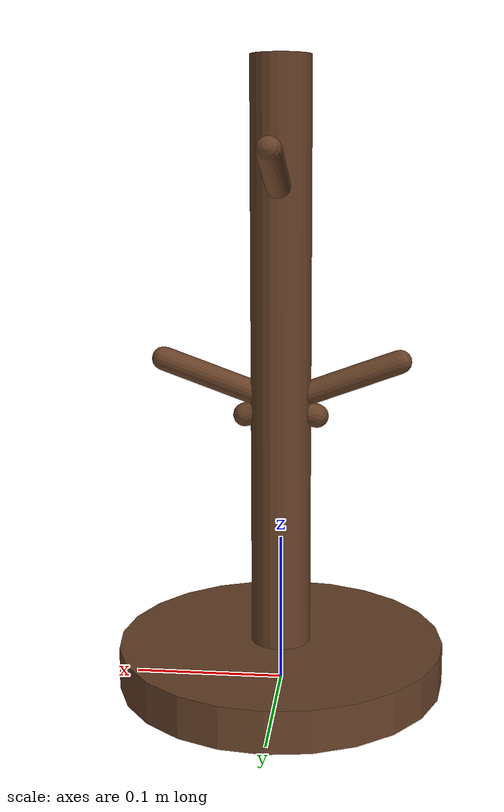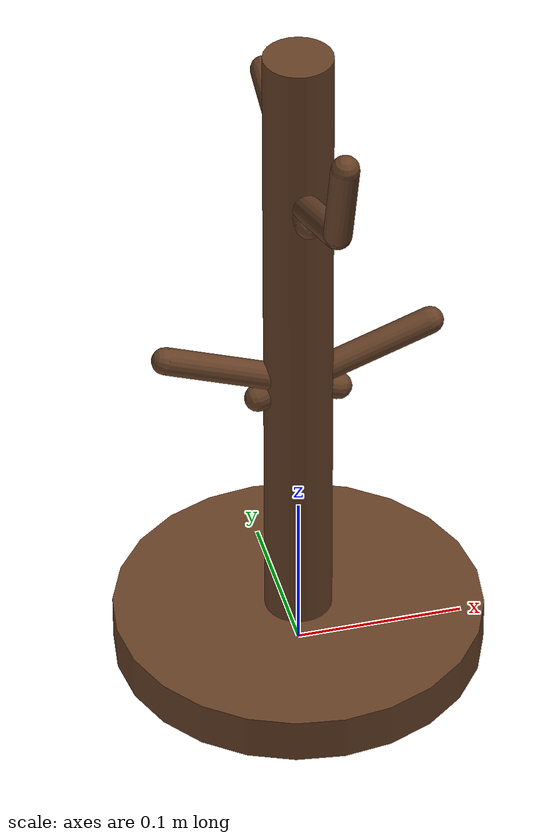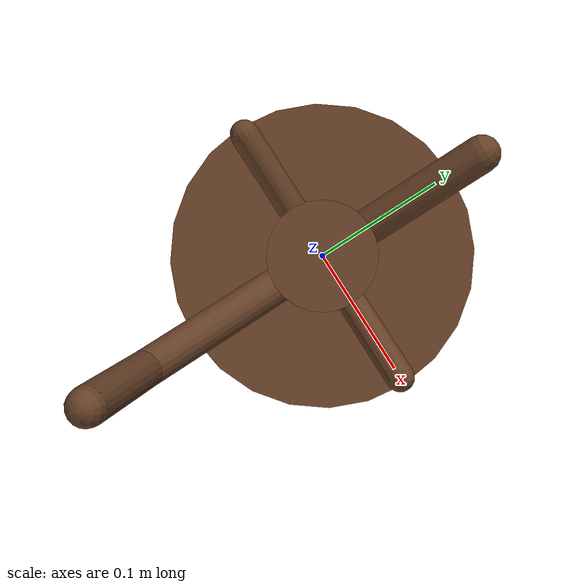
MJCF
<mujoco model="mug_rack_tilted">
  <compiler angle="radian"/>
  <!-- Variant of mug_rack.xml with an extra vertical branch at the end of the
       local negative-x top branch. Used by run_sim_oareg tilted mode. -->
  <worldbody>
    <body name="mug_rack" pos="0 0 0" euler="0 0 1.5708">
      <geom name="rack_base" type="cylinder" size="0.11 0.014" pos="0 0 0.014"
            rgba="0.4 0.25 0.15 1"/>
      <geom name="rack_pole" type="cylinder" size="0.02 0.20" pos="0 0 0.216"
            rgba="0.4 0.25 0.15 1"/>
      <geom name="branch_top_1" type="capsule" size="0.008 0.054" pos="0.027 0 0.338" euler="0 1.2217 0"
            rgba="0.4 0.25 0.15 1"/>
      <geom name="branch_top_2" type="capsule" size="0.008 0.04664172" pos="-0.04282856 0 0.33799999" euler="0 -1.16362772 0"
            rgba="0.4 0.25 0.15 1"/>
      <geom name="branch_mid_1" type="capsule" size="0.008 0.054" pos="0 0.027 0.203" euler="-1.2217 0 0"
            rgba="0.4 0.25 0.15 1"/>
      <geom name="branch_mid_2" type="capsule" size="0.008 0.054" pos="0 -0.027 0.203" euler="1.2217 0 0"
            rgba="0.4 0.25 0.15 1"/>
      <geom name="branch_top_2_z_ext" type="capsule" size="0.008"
            fromto="-0.08565712 0 0.35647063 -0.10065712 0 0.41047063"
            rgba="0.4 0.25 0.15 1"/>
    </body>
  </worldbody>
</mujoco>
